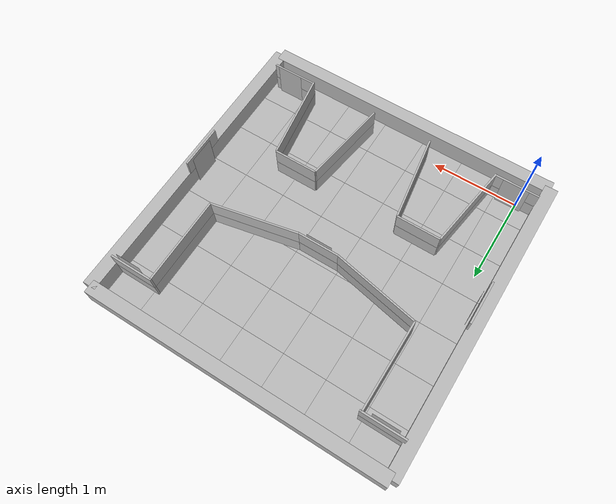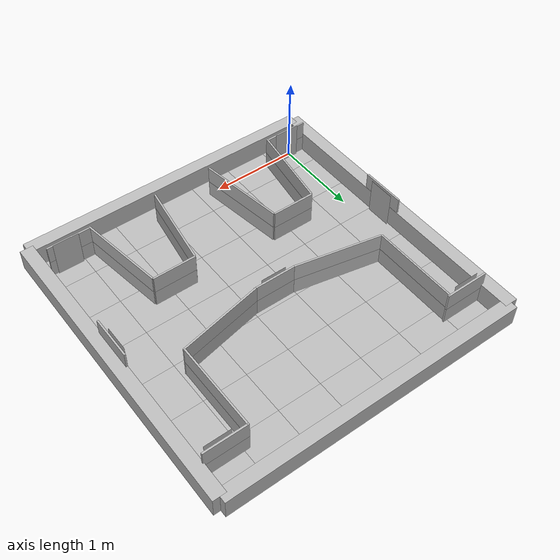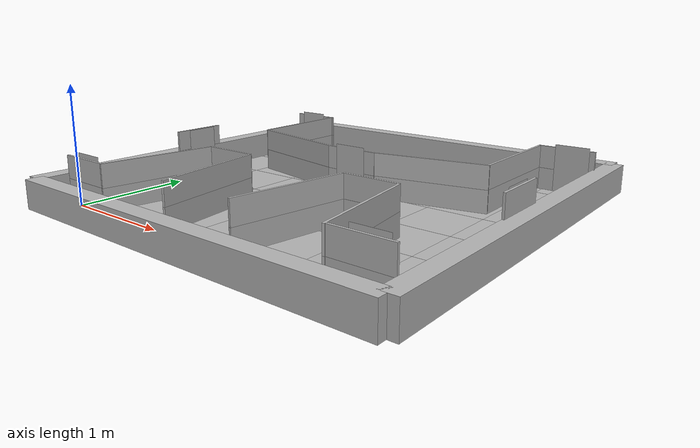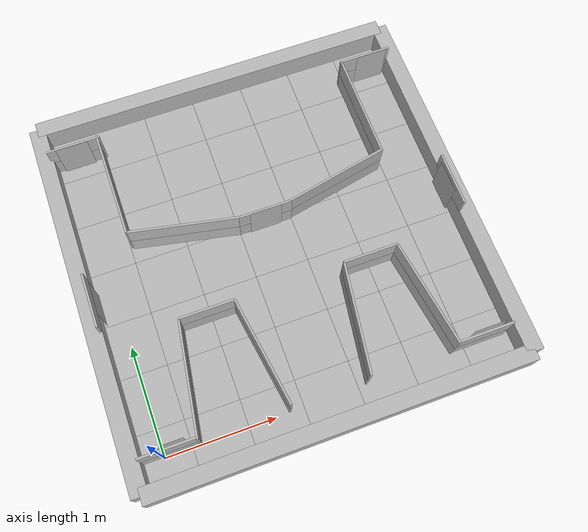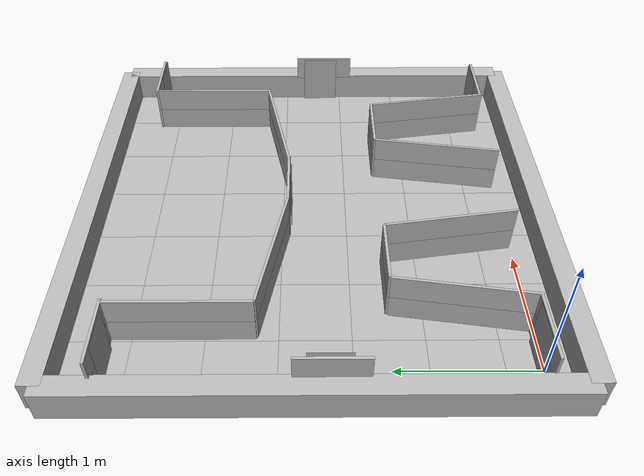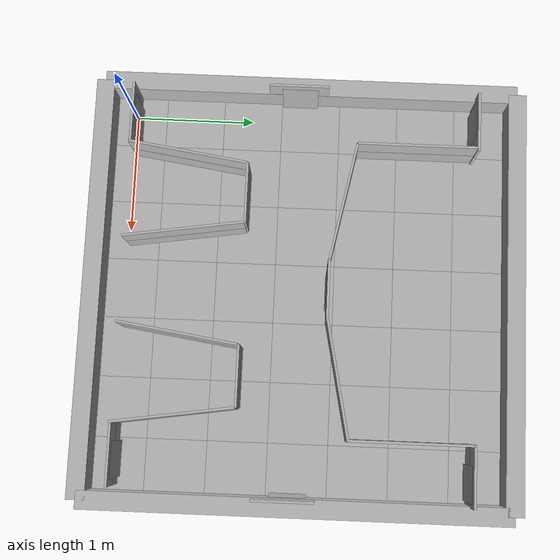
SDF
<sdf version="1.5">
 <world name="default">
  <physics name="default_physics" default="0" type="ode">
   <max_step_size>0.001</max_step_size>
   <real_time_factor>1</real_time_factor>
   <real_time_update_rate>1000</real_time_update_rate>
  </physics>
  <scene>
   <ambient>0.4 0.4 0.4 1</ambient>
   <background>0.7 0.7 0.7 1</background>
   <shadows>0</shadows>
   <grid>0</grid>
  </scene>
  <light name="sun" type="directional">
   <cast_shadows>0</cast_shadows>
   <pose>0 -100 10 0 -0 0</pose>
   <diffuse>0.8 0.8 0.8 1</diffuse>
   <specular>0.1 0.1 0.1 1</specular>
   <attenuation>
    <range>1000</range>
    <constant>0.9</constant>
    <linear>0.01</linear>
    <quadratic>0.001</quadratic>
   </attenuation>
   <direction>-0.5 0.5 -1</direction>
  </light>
  <include><name>arena</name><uri>model://dia_cr3_arena</uri></include>
  <include><name>rail-N</name><uri>model://dia_rail</uri><pose>1.5 3.25 0.12 0 0 0</pose></include>
  <include><name>rail-E</name><uri>model://dia_rail</uri><pose>3.25 1.5 0.12 0 0 1.57</pose></include>
  <include><name>rail-S</name><uri>model://dia_rail</uri><pose>1.5 -0.25 0.12 0 0 0</pose></include>
  <include><name>rail-W</name><uri>model://dia_rail</uri><pose>-0.25 1.5 0.12 0 0 1.57</pose></include>
  <include><name>panel-1a</name><uri>model://dia_panel</uri><pose>0.4 0.5 0.1 1.57 0 1.42</pose></include>
  <include><name>panel-1b</name><uri>model://dia_panel</uri><pose>0.4 0.5 0.3 1.57 0 1.42</pose></include>
  <include><name>panel-2a</name><uri>model://dia_panel</uri><pose>1.05 0.5 0.1 1.57 0 1.72</pose></include>
  <include><name>panel-2b</name><uri>model://dia_panel</uri><pose>1.05 0.5 0.3 1.57 0 1.72</pose></include>
  <include><name>panel-3a</name><uri>model://dia_panel</uri><pose>1.9 0.5 0.1 1.57 0 1.42</pose></include>
  <include><name>panel-3b</name><uri>model://dia_panel</uri><pose>1.9 0.5 0.3 1.57 0 1.42</pose></include>
  <include><name>panel-4a</name><uri>model://dia_panel</uri><pose>2.55 0.5 0.1 1.57 0 1.72</pose></include>
  <include><name>panel-4b</name><uri>model://dia_panel</uri><pose>2.55 0.5 0.3 1.57 0 1.72</pose></include>
  <include><name>panel-5a</name><uri>model://dia_panel</uri><pose>0.77 1.8 0.1 1.57 0 -0.2</pose></include>
  <include><name>panel-5b</name><uri>model://dia_panel</uri><pose>0.77 1.8 0.3 1.57 0 -0.2</pose></include>
  <include><name>panel-6a</name><uri>model://dia_panel</uri><pose>2.22 1.8 0.1 1.57 0 0.2</pose></include>
  <include><name>panel-6b</name><uri>model://dia_panel</uri><pose>2.22 1.8 0.3 1.57 0 0.2</pose></include>
  <include><name>panel-7a</name><uri>model://dia_panel</uri><pose>0.275 2.4 0.1 1.57 0 1.57</pose></include>
  <include><name>panel-7b</name><uri>model://dia_panel</uri><pose>0.275 2.4 0.3 1.57 0 1.57</pose></include>
  <include><name>panel-8a</name><uri>model://dia_panel</uri><pose>2.7 2.4 0.1 1.57 0 1.57</pose></include>
  <include><name>panel-8b</name><uri>model://dia_panel</uri><pose>2.7 2.4 0.3 1.57 0 1.57</pose></include>
  <include>
   <name>panel-short-1a</name>
   <uri>model://dia_panel_short</uri>
   <pose>0.725 1 0.1 1.57 0 0</pose>
  </include>
  <include>
   <name>panel-short-1b</name>
   <uri>model://dia_panel_short</uri>
   <pose>0.725 1 0.3 1.57 0 0</pose>
  </include>
  <include>
   <name>panel-short-2a</name>
   <uri>model://dia_panel_short</uri>
   <pose>2.225 1 0.1 1.57 0 0</pose>
  </include>
  <include>
   <name>panel-short-2b</name>
   <uri>model://dia_panel_short</uri>
   <pose>2.225 1 0.3 1.57 0 0</pose>
  </include>
  <include>
   <name>panel-tag-1a</name>
   <uri>model://dia_panel_short</uri>
   <pose>1.5 1.7 0.1 1.57 0 0</pose>
  </include>
  <include>
   <name>panel-tag-1b</name>
   <uri>model://dia_panel_short</uri>
   <pose>1.5 1.7 0.3 1.57 0 0</pose>
  </include>
  <include>
   <name>panel-tag-2</name>
   <uri>model://dia_panel_short</uri>
   <pose>-0.187 1.4 0.33 1.57 0 1.57</pose>
  </include>
  <include>
   <name>panel-tag-3</name>
   <uri>model://dia_panel_short</uri>
   <pose>3.184 1.4 0.33 1.57 0 1.57</pose>
  </include>
  <include>
   <name>panel-tag-4a</name>
   <uri>model://dia_panel_short</uri>
   <pose>0.07 0.02 0.1 1.57 0 0</pose>
  </include>
  <include>
   <name>panel-tag-4b</name>
   <uri>model://dia_panel_short</uri>
   <pose>0.07 0.02 0.3 1.57 0 0</pose>
  </include>
  <include>
   <name>panel-tag-5a</name>
   <uri>model://dia_panel_short</uri>
   <pose>0.05 2.9 0.1 1.57 0 0</pose>
  </include>
  <include>
   <name>panel-tag-5b</name>
   <uri>model://dia_panel_short</uri>
   <pose>0.05 2.9 0.3 1.57 0 0</pose>
  </include>
  <include>
   <name>panel-tag-6a</name>
   <uri>model://dia_panel_short</uri>
   <pose>2.94 2.9 0.1 1.57 0 0</pose>
  </include>
  <include>
   <name>panel-tag-6b</name>
   <uri>model://dia_panel_short</uri>
   <pose>2.94 2.9 0.3 1.57 0 0</pose>
  </include>
  <include>
   <name>panel-tag-7a</name>
   <uri>model://dia_panel_short</uri>
   <pose>2.88 0.02 0.1 1.57 0 0</pose>
  </include>
  <include>
   <name>panel-tag-7b</name>
   <uri>model://dia_panel_short</uri>
   <pose>2.88 0.02 0.3 1.57 0 0</pose>
  </include>
  <include><name>tag-1</name><uri>model://april_tag16_05_1</uri><pose>1.5 1.68 0.22 1.57 0 0</pose></include>
  <include>
   <name>tag-2</name>
   <uri>model://april_tag16_05_2</uri>
   <pose>-0.15 1.41 0.22 1.57 0 1.57</pose>
  </include>
  <include>
   <name>tag-3</name>
   <uri>model://april_tag16_05_3</uri>
   <pose>3.15 1.435 0.22 1.57 0 -1.57</pose>
  </include>
  <include>
   <name>tag-4</name>
   <uri>model://april_tag16_05_1</uri>
   <pose>0.08 0.05 0.22 -1.57 0 3.14</pose>
  </include>
  <include><name>tag-5</name><uri>model://april_tag16_05_4</uri><pose>0.035 2.87 0.22 -1.57 0 0</pose></include>
  <include><name>tag-6</name><uri>model://april_tag16_05_5</uri><pose>3 2.87 0.22 -1.57 0 0</pose></include>
  <include>
   <name>tag-7</name>
   <uri>model://april_tag16_05_6</uri>
   <pose>2.92 0.05 0.22 -1.57 0 3.14</pose>
  </include>
  <gravity>0 0 -9.8</gravity>
  <magnetic_field>6e-06 2.3e-05 -4.2e-05</magnetic_field>
  <atmosphere type="adiabatic"/>
  <spherical_coordinates>
   <surface_model>EARTH_WGS84</surface_model>
   <latitude_deg>0</latitude_deg>
   <longitude_deg>0</longitude_deg>
   <elevation>0</elevation>
   <heading_deg>0</heading_deg>
  </spherical_coordinates>
 </world>
</sdf>

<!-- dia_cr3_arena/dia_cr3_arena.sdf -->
<sdf version="1.5">
  <model name="dia_cr3_arena">
    <static>true</static>
    <link name="link">
      <collision name="surface_collision">
        <pose>1.525 1.525 0 0 0 0 0</pose>
        <geometry>
          <box>
            <size>3.55 3.55 0.01</size>
          </box>
        </geometry>
        <surface>
          <friction>
            <ode>
              <mu>0.3</mu>
              <mu2>0.3</mu2>
            </ode>
          </friction>
        </surface>
      </collision>

      <visual name="tile-1">
        <pose>0 0 0 0 0 0 0</pose>
        <geometry>
          <box>
            <size>0.5 0.5 0.01</size>
          </box>
        </geometry>
        <material>
          <script>
            <uri>model://dia_cr3_arena/materials/scripts</uri>
            <uri>model://dia_cr3_arena/materials/textures</uri>
            <name>arena_tile/Diffuse</name>
          </script>
        </material>
      </visual>

      <visual name="tile-2">
        <pose>0.5 0 0 0 0 0 0</pose>
        <geometry>
          <box>
            <size>0.5 0.5 0.01</size>
          </box>
        </geometry>
        <material>
          <script>
            <uri>model://dia_cr3_arena/materials/scripts</uri>
            <uri>model://dia_cr3_arena/materials/textures</uri>
            <name>arena_tile/Diffuse</name>
          </script>
        </material>
      </visual>

      <visual name="tile-3">
        <pose>1 0 0 0 0 0 0</pose>
        <geometry>
          <box>
            <size>0.5 0.5 0.01</size>
          </box>
        </geometry>
        <material>
          <script>
            <uri>model://dia_cr3_arena/materials/scripts</uri>
            <uri>model://dia_cr3_arena/materials/textures</uri>
            <name>arena_tile/Diffuse</name>
          </script>
        </material>
      </visual>

      <visual name="tile-4">
        <pose>1.5 0 0 0 0 0 0</pose>
        <geometry>
          <box>
            <size>0.5 0.5 0.01</size>
          </box>
        </geometry>
        <material>
          <script>
            <uri>model://dia_cr3_arena/materials/scripts</uri>
            <uri>model://dia_cr3_arena/materials/textures</uri>
            <name>arena_tile/Diffuse</name>
          </script>
        </material>
      </visual>

      <visual name="tile-5">
        <pose>2 0 0 0 0 0 0</pose>
        <geometry>
          <box>
            <size>0.5 0.5 0.01</size>
          </box>
        </geometry>
        <material>
          <script>
            <uri>model://dia_cr3_arena/materials/scripts</uri>
            <uri>model://dia_cr3_arena/materials/textures</uri>
            <name>arena_tile/Diffuse</name>
          </script>
        </material>
      </visual>

      <visual name="tile-6">
        <pose>2.5 0 0 0 0 0 0</pose>
        <geometry>
          <box>
            <size>0.5 0.5 0.01</size>
          </box>
        </geometry>
        <material>
          <script>
            <uri>model://dia_cr3_arena/materials/scripts</uri>
            <uri>model://dia_cr3_arena/materials/textures</uri>
            <name>arena_tile/Diffuse</name>
          </script>
        </material>
      </visual>

      <visual name="tile-7">
        <pose>3 0 0 0 0 0 0</pose>
        <geometry>
          <box>
            <size>0.5 0.5 0.01</size>
          </box>
        </geometry>
        <material>
          <script>
            <uri>model://dia_cr3_arena/materials/scripts</uri>
            <uri>model://dia_cr3_arena/materials/textures</uri>
            <name>arena_tile/Diffuse</name>
          </script>
        </material>
      </visual>

      <visual name="tile-8">
        <pose>0 0.5 0 0 0 0 0</pose>
        <geometry>
          <box>
            <size>0.5 0.5 0.01</size>
          </box>
        </geometry>
        <material>
          <script>
            <uri>model://dia_cr3_arena/materials/scripts</uri>
            <uri>model://dia_cr3_arena/materials/textures</uri>
            <name>arena_tile/Diffuse</name>
          </script>
        </material>
      </visual>

      <visual name="tile-9">
        <pose>0.5 0.5 0 0 0 0 0</pose>
        <geometry>
          <box>
            <size>0.5 0.5 0.01</size>
          </box>
        </geometry>
        <material>
          <script>
            <uri>model://dia_cr3_arena/materials/scripts</uri>
            <uri>model://dia_cr3_arena/materials/textures</uri>
            <name>arena_tile/Diffuse</name>
          </script>
        </material>
      </visual>

      <visual name="tile-10">
        <pose>1 0.5 0 0 0 0 0</pose>
        <geometry>
          <box>
            <size>0.5 0.5 0.01</size>
          </box>
        </geometry>
        <material>
          <script>
            <uri>model://dia_cr3_arena/materials/scripts</uri>
            <uri>model://dia_cr3_arena/materials/textures</uri>
            <name>arena_tile/Diffuse</name>
          </script>
        </material>
      </visual>

      <visual name="tile-11">
        <pose>1.5 0.5 0 0 0 0 0</pose>
        <geometry>
          <box>
            <size>0.5 0.5 0.01</size>
          </box>
        </geometry>
        <material>
          <script>
            <uri>model://dia_cr3_arena/materials/scripts</uri>
            <uri>model://dia_cr3_arena/materials/textures</uri>
            <name>arena_tile/Diffuse</name>
          </script>
        </material>
      </visual>

      <visual name="tile-12">
        <pose>2 0.5 0 0 0 0 0</pose>
        <geometry>
          <box>
            <size>0.5 0.5 0.01</size>
          </box>
        </geometry>
        <material>
          <script>
            <uri>model://dia_cr3_arena/materials/scripts</uri>
            <uri>model://dia_cr3_arena/materials/textures</uri>
            <name>arena_tile/Diffuse</name>
          </script>
        </material>
      </visual>

      <visual name="tile-13">
        <pose>2.5 0.5 0 0 0 0 0</pose>
        <geometry>
          <box>
            <size>0.5 0.5 0.01</size>
          </box>
        </geometry>
        <material>
          <script>
            <uri>model://dia_cr3_arena/materials/scripts</uri>
            <uri>model://dia_cr3_arena/materials/textures</uri>
            <name>arena_tile/Diffuse</name>
          </script>
        </material>
      </visual>

      <visual name="tile-14">
        <pose>3 0.5 0 0 0 0 0</pose>
        <geometry>
          <box>
            <size>0.5 0.5 0.01</size>
          </box>
        </geometry>
        <material>
          <script>
            <uri>model://dia_cr3_arena/materials/scripts</uri>
            <uri>model://dia_cr3_arena/materials/textures</uri>
            <name>arena_tile/Diffuse</name>
          </script>
        </material>
      </visual>

      <visual name="tile-15">
        <pose>0 1 0 0 0 0 0</pose>
        <geometry>
          <box>
            <size>0.5 0.5 0.01</size>
          </box>
        </geometry>
        <material>
          <script>
            <uri>model://dia_cr3_arena/materials/scripts</uri>
            <uri>model://dia_cr3_arena/materials/textures</uri>
            <name>arena_tile/Diffuse</name>
          </script>
        </material>
      </visual>

      <visual name="tile-16">
        <pose>0.5 1 0 0 0 0 0</pose>
        <geometry>
          <box>
            <size>0.5 0.5 0.01</size>
          </box>
        </geometry>
        <material>
          <script>
            <uri>model://dia_cr3_arena/materials/scripts</uri>
            <uri>model://dia_cr3_arena/materials/textures</uri>
            <name>arena_tile/Diffuse</name>
          </script>
        </material>
      </visual>

      <visual name="tile-17">
        <pose>1 1 0 0 0 0 0</pose>
        <geometry>
          <box>
            <size>0.5 0.5 0.01</size>
          </box>
        </geometry>
        <material>
          <script>
            <uri>model://dia_cr3_arena/materials/scripts</uri>
            <uri>model://dia_cr3_arena/materials/textures</uri>
            <name>arena_tile/Diffuse</name>
          </script>
        </material>
      </visual>

      <visual name="tile-18">
        <pose>1.5 1 0 0 0 0 0</pose>
        <geometry>
          <box>
            <size>0.5 0.5 0.01</size>
          </box>
        </geometry>
        <material>
          <script>
            <uri>model://dia_cr3_arena/materials/scripts</uri>
            <uri>model://dia_cr3_arena/materials/textures</uri>
            <name>arena_tile/Diffuse</name>
          </script>
        </material>
      </visual>

      <visual name="tile-19">
        <pose>2 1 0 0 0 0 0</pose>
        <geometry>
          <box>
            <size>0.5 0.5 0.01</size>
          </box>
        </geometry>
        <material>
          <script>
            <uri>model://dia_cr3_arena/materials/scripts</uri>
            <uri>model://dia_cr3_arena/materials/textures</uri>
            <name>arena_tile/Diffuse</name>
          </script>
        </material>
      </visual>

      <visual name="tile-20">
        <pose>2.5 1 0 0 0 0 0</pose>
        <geometry>
          <box>
            <size>0.5 0.5 0.01</size>
          </box>
        </geometry>
        <material>
          <script>
            <uri>model://dia_cr3_arena/materials/scripts</uri>
            <uri>model://dia_cr3_arena/materials/textures</uri>
            <name>arena_tile/Diffuse</name>
          </script>
        </material>
      </visual>

      <visual name="tile-21">
        <pose>3 1 0 0 0 0 0</pose>
        <geometry>
          <box>
            <size>0.5 0.5 0.01</size>
          </box>
        </geometry>
        <material>
          <script>
            <uri>model://dia_cr3_arena/materials/scripts</uri>
            <uri>model://dia_cr3_arena/materials/textures</uri>
            <name>arena_tile/Diffuse</name>
          </script>
        </material>
      </visual>

      <visual name="tile-22">
        <pose>0 1.5 0 0 0 0 0</pose>
        <geometry>
          <box>
            <size>0.5 0.5 0.01</size>
          </box>
        </geometry>
        <material>
          <script>
            <uri>model://dia_cr3_arena/materials/scripts</uri>
            <uri>model://dia_cr3_arena/materials/textures</uri>
            <name>arena_tile/Diffuse</name>
          </script>
        </material>
      </visual>

      <visual name="tile-23">
        <pose>0.5 1.5 0 0 0 0 0</pose>
        <geometry>
          <box>
            <size>0.5 0.5 0.01</size>
          </box>
        </geometry>
        <material>
          <script>
            <uri>model://dia_cr3_arena/materials/scripts</uri>
            <uri>model://dia_cr3_arena/materials/textures</uri>
            <name>arena_tile/Diffuse</name>
          </script>
        </material>
      </visual>

      <visual name="tile-24">
        <pose>1 1.5 0 0 0 0 0</pose>
        <geometry>
          <box>
            <size>0.5 0.5 0.01</size>
          </box>
        </geometry>
        <material>
          <script>
            <uri>model://dia_cr3_arena/materials/scripts</uri>
            <uri>model://dia_cr3_arena/materials/textures</uri>
            <name>arena_tile/Diffuse</name>
          </script>
        </material>
      </visual>

      <visual name="tile-25">
        <pose>1.5 1.5 0 0 0 0 0</pose>
        <geometry>
          <box>
            <size>0.5 0.5 0.01</size>
          </box>
        </geometry>
        <material>
          <script>
            <uri>model://dia_cr3_arena/materials/scripts</uri>
            <uri>model://dia_cr3_arena/materials/textures</uri>
            <name>arena_tile/Diffuse</name>
          </script>
        </material>
      </visual>

      <visual name="tile-26">
        <pose>2 1.5 0 0 0 0 0</pose>
        <geometry>
          <box>
            <size>0.5 0.5 0.01</size>
          </box>
        </geometry>
        <material>
          <script>
            <uri>model://dia_cr3_arena/materials/scripts</uri>
            <uri>model://dia_cr3_arena/materials/textures</uri>
            <name>arena_tile/Diffuse</name>
          </script>
        </material>
      </visual>

      <visual name="tile-27">
        <pose>2.5 1.5 0 0 0 0 0</pose>
        <geometry>
          <box>
            <size>0.5 0.5 0.01</size>
          </box>
        </geometry>
        <material>
          <script>
            <uri>model://dia_cr3_arena/materials/scripts</uri>
            <uri>model://dia_cr3_arena/materials/textures</uri>
            <name>arena_tile/Diffuse</name>
          </script>
        </material>
      </visual>

      <visual name="tile-28">
        <pose>3 1.5 0 0 0 0 0</pose>
        <geometry>
          <box>
            <size>0.5 0.5 0.01</size>
          </box>
        </geometry>
        <material>
          <script>
            <uri>model://dia_cr3_arena/materials/scripts</uri>
            <uri>model://dia_cr3_arena/materials/textures</uri>
            <name>arena_tile/Diffuse</name>
          </script>
        </material>
      </visual>

      <visual name="tile-29">
        <pose>0 2 0 0 0 0 0</pose>
        <geometry>
          <box>
            <size>0.5 0.5 0.01</size>
          </box>
        </geometry>
        <material>
          <script>
            <uri>model://dia_cr3_arena/materials/scripts</uri>
            <uri>model://dia_cr3_arena/materials/textures</uri>
            <name>arena_tile/Diffuse</name>
          </script>
        </material>
      </visual>

      <visual name="tile-30">
        <pose>0.5 2 0 0 0 0 0</pose>
        <geometry>
          <box>
            <size>0.5 0.5 0.01</size>
          </box>
        </geometry>
        <material>
          <script>
            <uri>model://dia_cr3_arena/materials/scripts</uri>
            <uri>model://dia_cr3_arena/materials/textures</uri>
            <name>arena_tile/Diffuse</name>
          </script>
        </material>
      </visual>

      <visual name="tile-31">
        <pose>1 2 0 0 0 0 0</pose>
        <geometry>
          <box>
            <size>0.5 0.5 0.01</size>
          </box>
        </geometry>
        <material>
          <script>
            <uri>model://dia_cr3_arena/materials/scripts</uri>
            <uri>model://dia_cr3_arena/materials/textures</uri>
            <name>arena_tile/Diffuse</name>
          </script>
        </material>
      </visual>

      <visual name="tile-32">
        <pose>1.5 2 0 0 0 0 0</pose>
        <geometry>
          <box>
            <size>0.5 0.5 0.01</size>
          </box>
        </geometry>
        <material>
          <script>
            <uri>model://dia_cr3_arena/materials/scripts</uri>
            <uri>model://dia_cr3_arena/materials/textures</uri>
            <name>arena_tile/Diffuse</name>
          </script>
        </material>
      </visual>

      <visual name="tile-33">
        <pose>2 2 0 0 0 0 0</pose>
        <geometry>
          <box>
            <size>0.5 0.5 0.01</size>
          </box>
        </geometry>
        <material>
          <script>
            <uri>model://dia_cr3_arena/materials/scripts</uri>
            <uri>model://dia_cr3_arena/materials/textures</uri>
            <name>arena_tile/Diffuse</name>
          </script>
        </material>
      </visual>

      <visual name="tile-34">
        <pose>2.5 2 0 0 0 0 0</pose>
        <geometry>
          <box>
            <size>0.5 0.5 0.01</size>
          </box>
        </geometry>
        <material>
          <script>
            <uri>model://dia_cr3_arena/materials/scripts</uri>
            <uri>model://dia_cr3_arena/materials/textures</uri>
            <name>arena_tile/Diffuse</name>
          </script>
        </material>
      </visual>

      <visual name="tile-35">
        <pose>3 2 0 0 0 0 0</pose>
        <geometry>
          <box>
            <size>0.5 0.5 0.01</size>
          </box>
        </geometry>
        <material>
          <script>
            <uri>model://dia_cr3_arena/materials/scripts</uri>
            <uri>model://dia_cr3_arena/materials/textures</uri>
            <name>arena_tile/Diffuse</name>
          </script>
        </material>
      </visual>

      <visual name="tile-36">
        <pose>0 2.5 0 0 0 0 0</pose>
        <geometry>
          <box>
            <size>0.5 0.5 0.01</size>
          </box>
        </geometry>
        <material>
          <script>
            <uri>model://dia_cr3_arena/materials/scripts</uri>
            <uri>model://dia_cr3_arena/materials/textures</uri>
            <name>arena_tile/Diffuse</name>
          </script>
        </material>
      </visual>

      <visual name="tile-37">
        <pose>0.5 2.5 0 0 0 0 0</pose>
        <geometry>
          <box>
            <size>0.5 0.5 0.01</size>
          </box>
        </geometry>
        <material>
          <script>
            <uri>model://dia_cr3_arena/materials/scripts</uri>
            <uri>model://dia_cr3_arena/materials/textures</uri>
            <name>arena_tile/Diffuse</name>
          </script>
        </material>
      </visual>

      <visual name="tile-38">
        <pose>1 2.5 0 0 0 0 0</pose>
        <geometry>
          <box>
            <size>0.5 0.5 0.01</size>
          </box>
        </geometry>
        <material>
          <script>
            <uri>model://dia_cr3_arena/materials/scripts</uri>
            <uri>model://dia_cr3_arena/materials/textures</uri>
            <name>arena_tile/Diffuse</name>
          </script>
        </material>
      </visual>

      <visual name="tile-39">
        <pose>1.5 2.5 0 0 0 0 0</pose>
        <geometry>
          <box>
            <size>0.5 0.5 0.01</size>
          </box>
        </geometry>
        <material>
          <script>
            <uri>model://dia_cr3_arena/materials/scripts</uri>
            <uri>model://dia_cr3_arena/materials/textures</uri>
            <name>arena_tile/Diffuse</name>
          </script>
        </material>
      </visual>

      <visual name="tile-40">
        <pose>2 2.5 0 0 0 0 0</pose>
        <geometry>
          <box>
            <size>0.5 0.5 0.01</size>
          </box>
        </geometry>
        <material>
          <script>
            <uri>model://dia_cr3_arena/materials/scripts</uri>
            <uri>model://dia_cr3_arena/materials/textures</uri>
            <name>arena_tile/Diffuse</name>
          </script>
        </material>
      </visual>

      <visual name="tile-41">
        <pose>2.5 2.5 0 0 0 0 0</pose>
        <geometry>
          <box>
            <size>0.5 0.5 0.01</size>
          </box>
        </geometry>
        <material>
          <script>
            <uri>model://dia_cr3_arena/materials/scripts</uri>
            <uri>model://dia_cr3_arena/materials/textures</uri>
            <name>arena_tile/Diffuse</name>
          </script>
        </material>
      </visual>

      <visual name="tile-42">
        <pose>3 2.5 0 0 0 0 0</pose>
        <geometry>
          <box>
            <size>0.5 0.5 0.01</size>
          </box>
        </geometry>
        <material>
          <script>
            <uri>model://dia_cr3_arena/materials/scripts</uri>
            <uri>model://dia_cr3_arena/materials/textures</uri>
            <name>arena_tile/Diffuse</name>
          </script>
        </material>
      </visual>

      <visual name="tile-43">
        <pose>0 3 0 0 0 0 0</pose>
        <geometry>
          <box>
            <size>0.5 0.5 0.01</size>
          </box>
        </geometry>
        <material>
          <script>
            <uri>model://dia_cr3_arena/materials/scripts</uri>
            <uri>model://dia_cr3_arena/materials/textures</uri>
            <name>arena_tile/Diffuse</name>
          </script>
        </material>
      </visual>

      <visual name="tile-44">
        <pose>0.5 3 0 0 0 0 0</pose>
        <geometry>
          <box>
            <size>0.5 0.5 0.01</size>
          </box>
        </geometry>
        <material>
          <script>
            <uri>model://dia_cr3_arena/materials/scripts</uri>
            <uri>model://dia_cr3_arena/materials/textures</uri>
            <name>arena_tile/Diffuse</name>
          </script>
        </material>
      </visual>

      <visual name="tile-45">
        <pose>1 3 0 0 0 0 0</pose>
        <geometry>
          <box>
            <size>0.5 0.5 0.01</size>
          </box>
        </geometry>
        <material>
          <script>
            <uri>model://dia_cr3_arena/materials/scripts</uri>
            <uri>model://dia_cr3_arena/materials/textures</uri>
            <name>arena_tile/Diffuse</name>
          </script>
        </material>
      </visual>

      <visual name="tile-46">
        <pose>1.5 3 0 0 0 0 0</pose>
        <geometry>
          <box>
            <size>0.5 0.5 0.01</size>
          </box>
        </geometry>
        <material>
          <script>
            <uri>model://dia_cr3_arena/materials/scripts</uri>
            <uri>model://dia_cr3_arena/materials/textures</uri>
            <name>arena_tile/Diffuse</name>
          </script>
        </material>
      </visual>

      <visual name="tile-47">
        <pose>2 3 0 0 0 0 0</pose>
        <geometry>
          <box>
            <size>0.5 0.5 0.01</size>
          </box>
        </geometry>
        <material>
          <script>
            <uri>model://dia_cr3_arena/materials/scripts</uri>
            <uri>model://dia_cr3_arena/materials/textures</uri>
            <name>arena_tile/Diffuse</name>
          </script>
        </material>
      </visual>

      <visual name="tile-48">
        <pose>2.5 3 0 0 0 0 0</pose>
        <geometry>
          <box>
            <size>0.5 0.5 0.01</size>
          </box>
        </geometry>
        <material>
          <script>
            <uri>model://dia_cr3_arena/materials/scripts</uri>
            <uri>model://dia_cr3_arena/materials/textures</uri>
            <name>arena_tile/Diffuse</name>
          </script>
        </material>
      </visual>

      <visual name="tile-49">
        <pose>3 3 0 0 0 0 0</pose>
        <geometry>
          <box>
            <size>0.5 0.5 0.01</size>
          </box>
        </geometry>
        <material>
          <script>
            <uri>model://dia_cr3_arena/materials/scripts</uri>
            <uri>model://dia_cr3_arena/materials/textures</uri>
            <name>arena_tile/Diffuse</name>
          </script>
        </material>
      </visual>
    </link>
  </model>
</sdf>

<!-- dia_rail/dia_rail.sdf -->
<sdf version="1.5">
  <model name="dia_rail">
    <static>true</static>
    <link name="link">
      <collision name="rail-1">
        <pose>0 0 0 0 0 0</pose>
        <geometry>
          <box>
            <size>3.5 0.15 0.25</size>
          </box>
        </geometry>
      </collision>
      <visual name="rail-visual-1">
        <pose>0 0 0 0 0 0</pose>
        <geometry>
          <box>
            <size>3.5 0.15 0.25</size>
          </box>
        </geometry>
        <material>
          <script>
            <uri>model://dia_rail/materials/scripts</uri>
            <uri>model://dia_rail/materials/textures</uri>
            <name>dia_rail/Diffuse</name>
          </script>
        </material>
      </visual>
    </link>
  </model>
</sdf>

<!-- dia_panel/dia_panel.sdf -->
<sdf version="1.5">
  <model name="dia_panel">
    <static>true</static>
    <link name="link">
      <collision name="surface">
        <pose>0 0 0 0 0 0</pose>
        <geometry>
          <box>
            <size>1.0 0.2 0.02</size>
          </box>
        </geometry>
      </collision>
      <visual name="surface">
        <pose>0 0 0 0 0 0</pose>
        <geometry>
          <box>
            <size>1.0 0.2 0.02</size>
          </box>
        </geometry>
        <material>
          <script>
            <uri>model://dia_panel/materials/scripts</uri>
            <uri>model://dia_panel/materials/textures</uri>
            <name>dia_panel/Diffuse</name>
          </script>
        </material>
      </visual>
    </link>
  </model>
</sdf>

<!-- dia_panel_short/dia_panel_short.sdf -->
<sdf version="1.5">
  <model name="dia_panel_short">
    <static>true</static>
    <link name="link">
      <collision name="surface">
        <pose>0 0 0 0 0 0</pose>
        <geometry>
          <box>
            <size>0.5 0.2 0.02</size>
          </box>
        </geometry>
      </collision>
      <visual name="surface">
        <pose>0 0 0 0 0 0</pose>
        <geometry>
          <box>
            <size>0.5 0.2 0.02</size>
          </box>
        </geometry>
        <material>
          <script>
            <uri>model://dia_panel_short/materials/scripts</uri>
            <uri>model://dia_panel_short/materials/textures</uri>
            <name>dia_panel_short/Diffuse</name>
          </script>
        </material>
      </visual>
    </link>
  </model>
</sdf>

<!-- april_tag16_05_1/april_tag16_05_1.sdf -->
<sdf version="1.5">
  <model name="april_tag16_05_1">
    <static>true</static>
      <link name="april_tag16_05_1">
        <collision name="tag-collision">
          <pose>0 0 0 0 0 0</pose>
          <geometry>
            <box>
              <size>0.297 0.42 0.00</size>
            </box>
          </geometry>
        </collision>
        <visual name="tag-visual">
          <pose>0 0 0 0 0 0</pose>
          <geometry>
            <box>
              <size>0.297 0.42 0.00</size>
            </box>
          </geometry>
          <material>
            <script>
              <uri>model://april_tag16_05_1/materials/scripts</uri>
              <uri>model://april_tag16_05_1/materials/textures</uri>
              <name>april_tag16_05_1/Diffuse</name>
            </script>
          </material>
        </visual>
      </link>
  </model>
</sdf>

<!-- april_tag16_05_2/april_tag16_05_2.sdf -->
<sdf version="1.5">
  <model name="april_tag16_05_2">
    <static>true</static>
      <link name="april_tag16_05_2">
        <collision name="tag-collision">
          <pose>0 0 0 0 0 0</pose>
          <geometry>
            <box>
              <size>0.297 0.42 0.00</size>
            </box>
          </geometry>
        </collision>
        <visual name="tag-visual">
          <pose>0 0 0 0 0 0</pose>
          <geometry>
            <box>
              <size>0.297 0.42 0.00</size>
            </box>
          </geometry>
          <material>
            <script>
              <uri>model://april_tag16_05_2/materials/scripts</uri>
              <uri>model://april_tag16_05_2/materials/textures</uri>
              <name>april_tag16_05_2/Diffuse</name>
            </script>
          </material>
        </visual>
      </link>
  </model>
</sdf>

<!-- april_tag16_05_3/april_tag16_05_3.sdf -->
<sdf version="1.5">
  <model name="april_tag16_05_3">
    <static>true</static>
      <link name="april_tag16_05_3">
        <collision name="tag-collision">
          <pose>0 0 0 0 0 0</pose>
          <geometry>
            <box>
              <size>0.297 0.42 0.00</size>
            </box>
          </geometry>
        </collision>
        <visual name="tag-visual">
          <pose>0 0 0 0 0 0</pose>
          <geometry>
            <box>
              <size>0.297 0.42 0.00</size>
            </box>
          </geometry>
          <material>
            <script>
              <uri>model://april_tag16_05_3/materials/scripts</uri>
              <uri>model://april_tag16_05_3/materials/textures</uri>
              <name>april_tag16_05_3/Diffuse</name>
            </script>
          </material>
        </visual>
      </link>
  </model>
</sdf>

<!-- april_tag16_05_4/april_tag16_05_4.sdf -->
<sdf version="1.5">
  <model name="april_tag16_05_4">
    <static>true</static>
      <link name="april_tag16_05_4">
        <collision name="tag-collision">
          <pose>0 0 0 0 0 0</pose>
          <geometry>
            <box>
              <size>0.297 0.42 0.00</size>
            </box>
          </geometry>
        </collision>
        <visual name="tag-visual">
          <pose>0 0 0 0 0 0</pose>
          <geometry>
            <box>
              <size>0.297 0.42 0.00</size>
            </box>
          </geometry>
          <material>
            <script>
              <uri>model://april_tag16_05_4/materials/scripts</uri>
              <uri>model://april_tag16_05_4/materials/textures</uri>
              <name>april_tag16_05_4/Diffuse</name>
            </script>
          </material>
        </visual>
      </link>
  </model>
</sdf>

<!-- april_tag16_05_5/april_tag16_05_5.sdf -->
<sdf version="1.5">
  <model name="april_tag16_05_5">
    <static>true</static>
      <link name="april_tag16_05_5">
        <collision name="tag-collision">
          <pose>0 0 0 0 0 0</pose>
          <geometry>
            <box>
              <size>0.297 0.42 0.00</size>
            </box>
          </geometry>
        </collision>
        <visual name="tag-visual">
          <pose>0 0 0 0 0 0</pose>
          <geometry>
            <box>
              <size>0.297 0.42 0.00</size>
            </box>
          </geometry>
          <material>
            <script>
              <uri>model://april_tag16_05_5/materials/scripts</uri>
              <uri>model://april_tag16_05_5/materials/textures</uri>
              <name>april_tag16_05_5/Diffuse</name>
            </script>
          </material>
        </visual>
      </link>
  </model>
</sdf>

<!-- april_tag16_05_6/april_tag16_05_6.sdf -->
<sdf version="1.5">
  <model name="april_tag16_05_6">
    <static>true</static>
      <link name="april_tag16_05_6">
        <collision name="tag-collision">
          <pose>0 0 0 0 0 0</pose>
          <geometry>
            <box>
              <size>0.297 0.42 0.00</size>
            </box>
          </geometry>
        </collision>
        <visual name="tag-visual">
          <pose>0 0 0 0 0 0</pose>
          <geometry>
            <box>
              <size>0.297 0.42 0.00</size>
            </box>
          </geometry>
          <material>
            <script>
              <uri>model://april_tag16_05_6/materials/scripts</uri>
              <uri>model://april_tag16_05_6/materials/textures</uri>
              <name>april_tag16_05_6/Diffuse</name>
            </script>
          </material>
        </visual>
      </link>
  </model>
</sdf>
